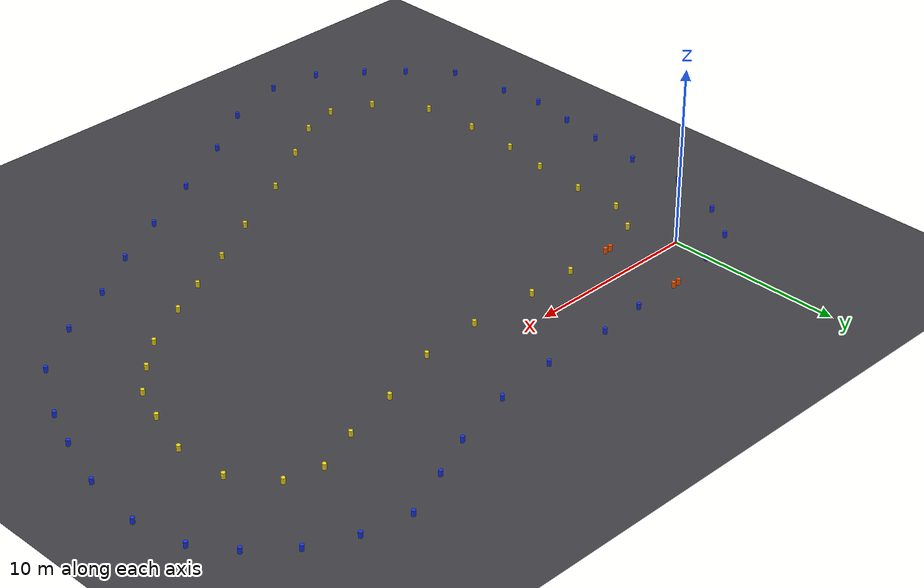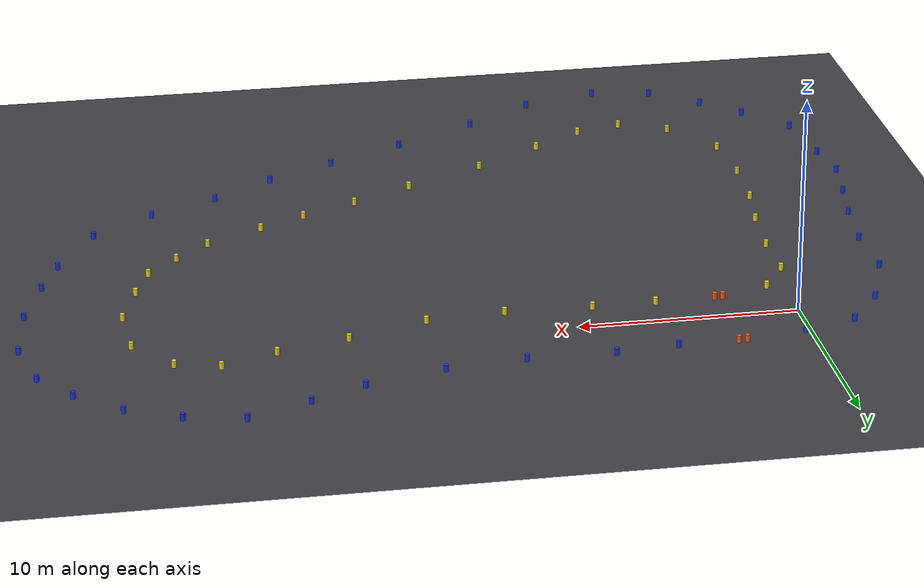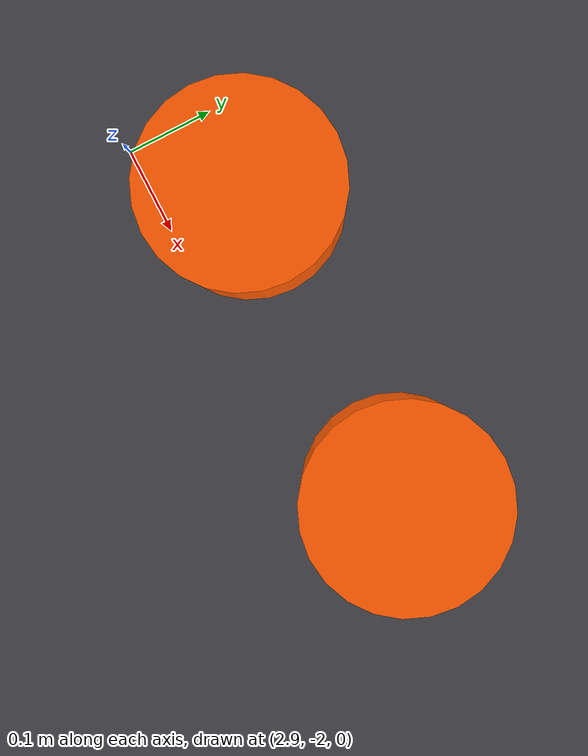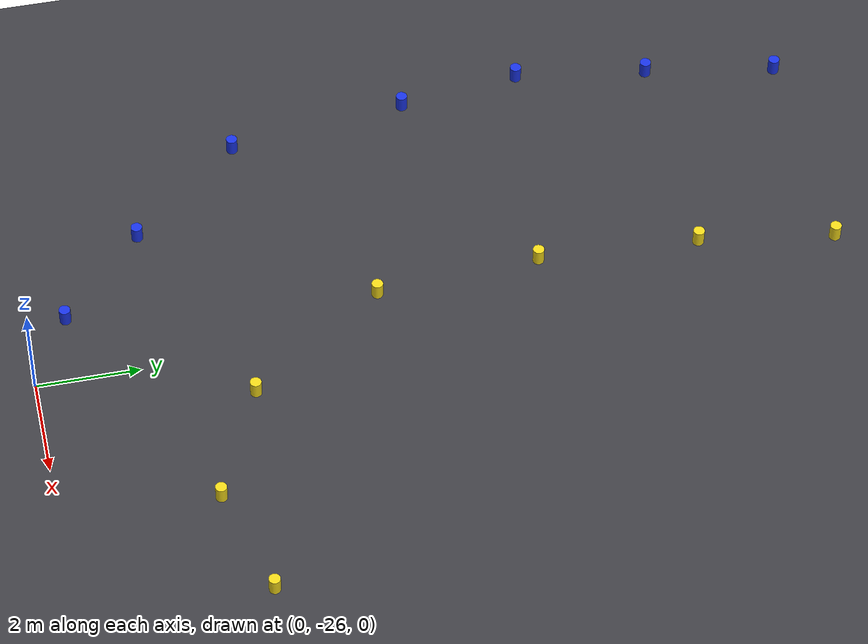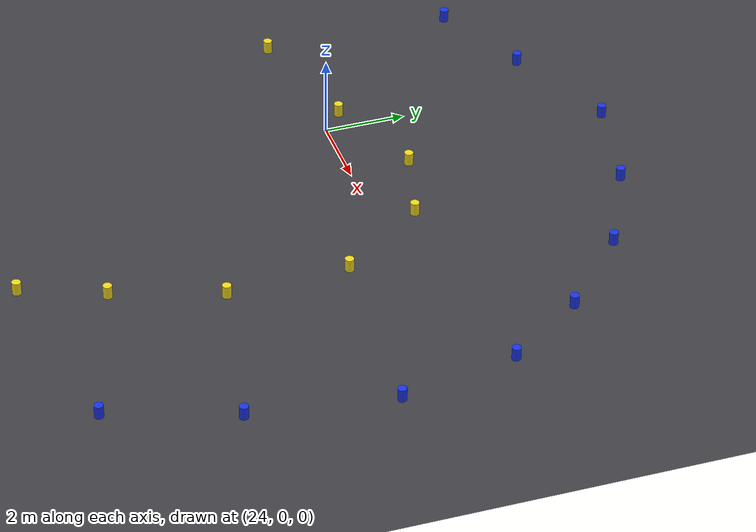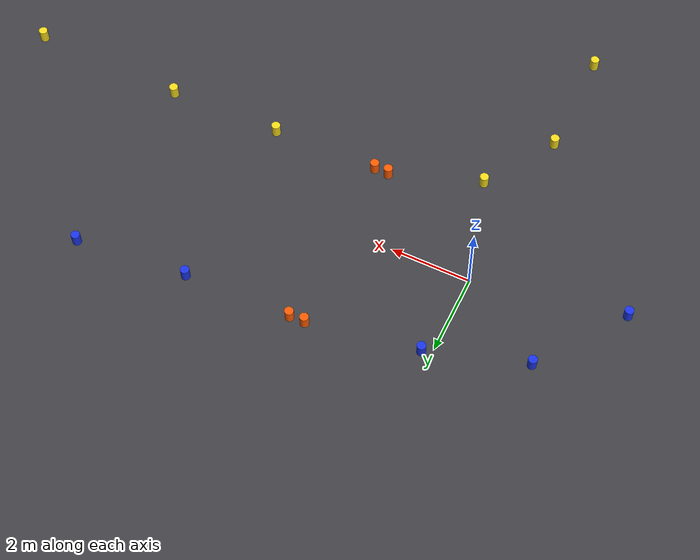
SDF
<?xml version="1.0" ?>
<sdf version="1.8">
  <world name="neurogrip_visual">
    <physics name="1ms" type="ignored">
      <max_step_size>0.001</max_step_size>
      <real_time_factor>1.0</real_time_factor>
    </physics>
    <plugin filename="libignition-gazebo-scene-broadcaster-system.so"
            name="ignition::gazebo::systems::SceneBroadcaster"/>
    <plugin filename="libignition-gazebo-physics-system.so"
            name="ignition::gazebo::systems::Physics"/>
    <plugin filename="libignition-gazebo-user-commands-system.so"
            name="ignition::gazebo::systems::UserCommands"/>
    <scene>
      <ambient>0.6 0.6 0.6 1</ambient>
      <background>0.8 0.85 0.9 1</background>
    </scene>
    <light type="directional" name="sun">
      <cast_shadows>true</cast_shadows>
      <pose>0 0 10 0 0 0</pose>
      <diffuse>0.9 0.9 0.9 1</diffuse>
      <specular>0.2 0.2 0.2 1</specular>
      <direction>-0.5 0.1 -0.9</direction>
    </light>
    <model name="ground_plane">
      <static>true</static>
      <link name="link">
        <collision name="collision">
          <geometry><plane><normal>0 0 1</normal><size>200 200</size></plane></geometry>
          <surface><friction><ode><mu>1.0</mu><mu2>1.0</mu2></ode></friction></surface>
        </collision>
        <visual name="visual">
          <geometry><plane><normal>0 0 1</normal><size>200 200</size></plane></geometry>
          <material><ambient>0.25 0.25 0.27 1</ambient><diffuse>0.25 0.25 0.27 1</diffuse></material>
        </visual>
      </link>
    </model>
    <model name="cone_0000_blue">
      <static>true</static>
      <link name="link">
        <collision name="collision">
          <geometry><cylinder><radius>0.11</radius><length>0.325</length></cylinder></geometry>
        </collision>
        <visual name="visual">
          <geometry><cylinder><radius>0.11</radius><length>0.325</length></cylinder></geometry>
          <material><ambient>0.1 0.2 0.9 1</ambient><diffuse>0.1 0.2 0.9 1</diffuse></material>
        </visual>
      </link>
      <pose>-3.7219 -0.7307 0.1625 0 0 0</pose>
    </model>
    <model name="cone_0001_blue">
      <static>true</static>
      <link name="link">
        <collision name="collision">
          <geometry><cylinder><radius>0.11</radius><length>0.325</length></cylinder></geometry>
        </collision>
        <visual name="visual">
          <geometry><cylinder><radius>0.11</radius><length>0.325</length></cylinder></geometry>
          <material><ambient>0.1 0.2 0.9 1</ambient><diffuse>0.1 0.2 0.9 1</diffuse></material>
        </visual>
      </link>
      <pose>0.2447 2.1900 0.1625 0 0 0</pose>
    </model>
    <model name="cone_0002_blue">
      <static>true</static>
      <link name="link">
        <collision name="collision">
          <geometry><cylinder><radius>0.11</radius><length>0.325</length></cylinder></geometry>
        </collision>
        <visual name="visual">
          <geometry><cylinder><radius>0.11</radius><length>0.325</length></cylinder></geometry>
          <material><ambient>0.1 0.2 0.9 1</ambient><diffuse>0.1 0.2 0.9 1</diffuse></material>
        </visual>
      </link>
      <pose>6.1094 2.7757 0.1625 0 0 0</pose>
    </model>
    <model name="cone_0003_blue">
      <static>true</static>
      <link name="link">
        <collision name="collision">
          <geometry><cylinder><radius>0.11</radius><length>0.325</length></cylinder></geometry>
        </collision>
        <visual name="visual">
          <geometry><cylinder><radius>0.11</radius><length>0.325</length></cylinder></geometry>
          <material><ambient>0.1 0.2 0.9 1</ambient><diffuse>0.1 0.2 0.9 1</diffuse></material>
        </visual>
      </link>
      <pose>22.6296 5.5379 0.1625 0 0 0</pose>
    </model>
    <model name="cone_0004_blue">
      <static>true</static>
      <link name="link">
        <collision name="collision">
          <geometry><cylinder><radius>0.11</radius><length>0.325</length></cylinder></geometry>
        </collision>
        <visual name="visual">
          <geometry><cylinder><radius>0.11</radius><length>0.325</length></cylinder></geometry>
          <material><ambient>0.1 0.2 0.9 1</ambient><diffuse>0.1 0.2 0.9 1</diffuse></material>
        </visual>
      </link>
      <pose>25.4920 6.7404 0.1625 0 0 0</pose>
    </model>
    <model name="cone_0005_blue">
      <static>true</static>
      <link name="link">
        <collision name="collision">
          <geometry><cylinder><radius>0.11</radius><length>0.325</length></cylinder></geometry>
        </collision>
        <visual name="visual">
          <geometry><cylinder><radius>0.11</radius><length>0.325</length></cylinder></geometry>
          <material><ambient>0.1 0.2 0.9 1</ambient><diffuse>0.1 0.2 0.9 1</diffuse></material>
        </visual>
      </link>
      <pose>28.1389 6.2025 0.1625 0 0 0</pose>
    </model>
    <model name="cone_0006_blue">
      <static>true</static>
      <link name="link">
        <collision name="collision">
          <geometry><cylinder><radius>0.11</radius><length>0.325</length></cylinder></geometry>
        </collision>
        <visual name="visual">
          <geometry><cylinder><radius>0.11</radius><length>0.325</length></cylinder></geometry>
          <material><ambient>0.1 0.2 0.9 1</ambient><diffuse>0.1 0.2 0.9 1</diffuse></material>
        </visual>
      </link>
      <pose>32.5034 3.3361 0.1625 0 0 0</pose>
    </model>
    <model name="cone_0007_blue">
      <static>true</static>
      <link name="link">
        <collision name="collision">
          <geometry><cylinder><radius>0.11</radius><length>0.325</length></cylinder></geometry>
        </collision>
        <visual name="visual">
          <geometry><cylinder><radius>0.11</radius><length>0.325</length></cylinder></geometry>
          <material><ambient>0.1 0.2 0.9 1</ambient><diffuse>0.1 0.2 0.9 1</diffuse></material>
        </visual>
      </link>
      <pose>33.8922 1.4012 0.1625 0 0 0</pose>
    </model>
    <model name="cone_0008_blue">
      <static>true</static>
      <link name="link">
        <collision name="collision">
          <geometry><cylinder><radius>0.11</radius><length>0.325</length></cylinder></geometry>
        </collision>
        <visual name="visual">
          <geometry><cylinder><radius>0.11</radius><length>0.325</length></cylinder></geometry>
          <material><ambient>0.1 0.2 0.9 1</ambient><diffuse>0.1 0.2 0.9 1</diffuse></material>
        </visual>
      </link>
      <pose>30.5221 5.0812 0.1625 0 0 0</pose>
    </model>
    <model name="cone_0009_blue">
      <static>true</static>
      <link name="link">
        <collision name="collision">
          <geometry><cylinder><radius>0.11</radius><length>0.325</length></cylinder></geometry>
        </collision>
        <visual name="visual">
          <geometry><cylinder><radius>0.11</radius><length>0.325</length></cylinder></geometry>
          <material><ambient>0.1 0.2 0.9 1</ambient><diffuse>0.1 0.2 0.9 1</diffuse></material>
        </visual>
      </link>
      <pose>34.4761 -1.5043 0.1625 0 0 0</pose>
    </model>
    <model name="cone_0010_blue">
      <static>true</static>
      <link name="link">
        <collision name="collision">
          <geometry><cylinder><radius>0.11</radius><length>0.325</length></cylinder></geometry>
        </collision>
        <visual name="visual">
          <geometry><cylinder><radius>0.11</radius><length>0.325</length></cylinder></geometry>
          <material><ambient>0.1 0.2 0.9 1</ambient><diffuse>0.1 0.2 0.9 1</diffuse></material>
        </visual>
      </link>
      <pose>33.9992 -5.0234 0.1625 0 0 0</pose>
    </model>
    <model name="cone_0011_blue">
      <static>true</static>
      <link name="link">
        <collision name="collision">
          <geometry><cylinder><radius>0.11</radius><length>0.325</length></cylinder></geometry>
        </collision>
        <visual name="visual">
          <geometry><cylinder><radius>0.11</radius><length>0.325</length></cylinder></geometry>
          <material><ambient>0.1 0.2 0.9 1</ambient><diffuse>0.1 0.2 0.9 1</diffuse></material>
        </visual>
      </link>
      <pose>32.9925 -8.0595 0.1625 0 0 0</pose>
    </model>
    <model name="cone_0012_blue">
      <static>true</static>
      <link name="link">
        <collision name="collision">
          <geometry><cylinder><radius>0.11</radius><length>0.325</length></cylinder></geometry>
        </collision>
        <visual name="visual">
          <geometry><cylinder><radius>0.11</radius><length>0.325</length></cylinder></geometry>
          <material><ambient>0.1 0.2 0.9 1</ambient><diffuse>0.1 0.2 0.9 1</diffuse></material>
        </visual>
      </link>
      <pose>32.0983 -10.3000 0.1625 0 0 0</pose>
    </model>
    <model name="cone_0013_blue">
      <static>true</static>
      <link name="link">
        <collision name="collision">
          <geometry><cylinder><radius>0.11</radius><length>0.325</length></cylinder></geometry>
        </collision>
        <visual name="visual">
          <geometry><cylinder><radius>0.11</radius><length>0.325</length></cylinder></geometry>
          <material><ambient>0.1 0.2 0.9 1</ambient><diffuse>0.1 0.2 0.9 1</diffuse></material>
        </visual>
      </link>
      <pose>30.1824 -13.5399 0.1625 0 0 0</pose>
    </model>
    <model name="cone_0014_blue">
      <static>true</static>
      <link name="link">
        <collision name="collision">
          <geometry><cylinder><radius>0.11</radius><length>0.325</length></cylinder></geometry>
        </collision>
        <visual name="visual">
          <geometry><cylinder><radius>0.11</radius><length>0.325</length></cylinder></geometry>
          <material><ambient>0.1 0.2 0.9 1</ambient><diffuse>0.1 0.2 0.9 1</diffuse></material>
        </visual>
      </link>
      <pose>24.1140 -17.0441 0.1625 0 0 0</pose>
    </model>
    <model name="cone_0015_blue">
      <static>true</static>
      <link name="link">
        <collision name="collision">
          <geometry><cylinder><radius>0.11</radius><length>0.325</length></cylinder></geometry>
        </collision>
        <visual name="visual">
          <geometry><cylinder><radius>0.11</radius><length>0.325</length></cylinder></geometry>
          <material><ambient>0.1 0.2 0.9 1</ambient><diffuse>0.1 0.2 0.9 1</diffuse></material>
        </visual>
      </link>
      <pose>8.9345 3.0637 0.1625 0 0 0</pose>
    </model>
    <model name="cone_0016_blue">
      <static>true</static>
      <link name="link">
        <collision name="collision">
          <geometry><cylinder><radius>0.11</radius><length>0.325</length></cylinder></geometry>
        </collision>
        <visual name="visual">
          <geometry><cylinder><radius>0.11</radius><length>0.325</length></cylinder></geometry>
          <material><ambient>0.1 0.2 0.9 1</ambient><diffuse>0.1 0.2 0.9 1</diffuse></material>
        </visual>
      </link>
      <pose>27.2831 -15.5644 0.1625 0 0 0</pose>
    </model>
    <model name="cone_0017_blue">
      <static>true</static>
      <link name="link">
        <collision name="collision">
          <geometry><cylinder><radius>0.11</radius><length>0.325</length></cylinder></geometry>
        </collision>
        <visual name="visual">
          <geometry><cylinder><radius>0.11</radius><length>0.325</length></cylinder></geometry>
          <material><ambient>0.1 0.2 0.9 1</ambient><diffuse>0.1 0.2 0.9 1</diffuse></material>
        </visual>
      </link>
      <pose>21.2536 -18.8389 0.1625 0 0 0</pose>
    </model>
    <model name="cone_0018_blue">
      <static>true</static>
      <link name="link">
        <collision name="collision">
          <geometry><cylinder><radius>0.11</radius><length>0.325</length></cylinder></geometry>
        </collision>
        <visual name="visual">
          <geometry><cylinder><radius>0.11</radius><length>0.325</length></cylinder></geometry>
          <material><ambient>0.1 0.2 0.9 1</ambient><diffuse>0.1 0.2 0.9 1</diffuse></material>
        </visual>
      </link>
      <pose>18.0618 -20.4551 0.1625 0 0 0</pose>
    </model>
    <model name="cone_0019_blue">
      <static>true</static>
      <link name="link">
        <collision name="collision">
          <geometry><cylinder><radius>0.11</radius><length>0.325</length></cylinder></geometry>
        </collision>
        <visual name="visual">
          <geometry><cylinder><radius>0.11</radius><length>0.325</length></cylinder></geometry>
          <material><ambient>0.1 0.2 0.9 1</ambient><diffuse>0.1 0.2 0.9 1</diffuse></material>
        </visual>
      </link>
      <pose>14.4209 -22.2634 0.1625 0 0 0</pose>
    </model>
    <model name="cone_0020_blue">
      <static>true</static>
      <link name="link">
        <collision name="collision">
          <geometry><cylinder><radius>0.11</radius><length>0.325</length></cylinder></geometry>
        </collision>
        <visual name="visual">
          <geometry><cylinder><radius>0.11</radius><length>0.325</length></cylinder></geometry>
          <material><ambient>0.1 0.2 0.9 1</ambient><diffuse>0.1 0.2 0.9 1</diffuse></material>
        </visual>
      </link>
      <pose>10.5025 -24.3305 0.1625 0 0 0</pose>
    </model>
    <model name="cone_0021_blue">
      <static>true</static>
      <link name="link">
        <collision name="collision">
          <geometry><cylinder><radius>0.11</radius><length>0.325</length></cylinder></geometry>
        </collision>
        <visual name="visual">
          <geometry><cylinder><radius>0.11</radius><length>0.325</length></cylinder></geometry>
          <material><ambient>0.1 0.2 0.9 1</ambient><diffuse>0.1 0.2 0.9 1</diffuse></material>
        </visual>
      </link>
      <pose>7.2514 -26.4217 0.1625 0 0 0</pose>
    </model>
    <model name="cone_0022_blue">
      <static>true</static>
      <link name="link">
        <collision name="collision">
          <geometry><cylinder><radius>0.11</radius><length>0.325</length></cylinder></geometry>
        </collision>
        <visual name="visual">
          <geometry><cylinder><radius>0.11</radius><length>0.325</length></cylinder></geometry>
          <material><ambient>0.1 0.2 0.9 1</ambient><diffuse>0.1 0.2 0.9 1</diffuse></material>
        </visual>
      </link>
      <pose>3.6516 -27.4551 0.1625 0 0 0</pose>
    </model>
    <model name="cone_0023_blue">
      <static>true</static>
      <link name="link">
        <collision name="collision">
          <geometry><cylinder><radius>0.11</radius><length>0.325</length></cylinder></geometry>
        </collision>
        <visual name="visual">
          <geometry><cylinder><radius>0.11</radius><length>0.325</length></cylinder></geometry>
          <material><ambient>0.1 0.2 0.9 1</ambient><diffuse>0.1 0.2 0.9 1</diffuse></material>
        </visual>
      </link>
      <pose>0.7886 -26.9459 0.1625 0 0 0</pose>
    </model>
    <model name="cone_0024_blue">
      <static>true</static>
      <link name="link">
        <collision name="collision">
          <geometry><cylinder><radius>0.11</radius><length>0.325</length></cylinder></geometry>
        </collision>
        <visual name="visual">
          <geometry><cylinder><radius>0.11</radius><length>0.325</length></cylinder></geometry>
          <material><ambient>0.1 0.2 0.9 1</ambient><diffuse>0.1 0.2 0.9 1</diffuse></material>
        </visual>
      </link>
      <pose>-1.4625 -25.2249 0.1625 0 0 0</pose>
    </model>
    <model name="cone_0025_blue">
      <static>true</static>
      <link name="link">
        <collision name="collision">
          <geometry><cylinder><radius>0.11</radius><length>0.325</length></cylinder></geometry>
        </collision>
        <visual name="visual">
          <geometry><cylinder><radius>0.11</radius><length>0.325</length></cylinder></geometry>
          <material><ambient>0.1 0.2 0.9 1</ambient><diffuse>0.1 0.2 0.9 1</diffuse></material>
        </visual>
      </link>
      <pose>-3.2427 -23.5760 0.1625 0 0 0</pose>
    </model>
    <model name="cone_0026_blue">
      <static>true</static>
      <link name="link">
        <collision name="collision">
          <geometry><cylinder><radius>0.11</radius><length>0.325</length></cylinder></geometry>
        </collision>
        <visual name="visual">
          <geometry><cylinder><radius>0.11</radius><length>0.325</length></cylinder></geometry>
          <material><ambient>0.1 0.2 0.9 1</ambient><diffuse>0.1 0.2 0.9 1</diffuse></material>
        </visual>
      </link>
      <pose>12.8688 3.0125 0.1625 0 0 0</pose>
    </model>
    <model name="cone_0027_blue">
      <static>true</static>
      <link name="link">
        <collision name="collision">
          <geometry><cylinder><radius>0.11</radius><length>0.325</length></cylinder></geometry>
        </collision>
        <visual name="visual">
          <geometry><cylinder><radius>0.11</radius><length>0.325</length></cylinder></geometry>
          <material><ambient>0.1 0.2 0.9 1</ambient><diffuse>0.1 0.2 0.9 1</diffuse></material>
        </visual>
      </link>
      <pose>-5.1431 -21.3860 0.1625 0 0 0</pose>
    </model>
    <model name="cone_0028_blue">
      <static>true</static>
      <link name="link">
        <collision name="collision">
          <geometry><cylinder><radius>0.11</radius><length>0.325</length></cylinder></geometry>
        </collision>
        <visual name="visual">
          <geometry><cylinder><radius>0.11</radius><length>0.325</length></cylinder></geometry>
          <material><ambient>0.1 0.2 0.9 1</ambient><diffuse>0.1 0.2 0.9 1</diffuse></material>
        </visual>
      </link>
      <pose>-5.6174 -17.8608 0.1625 0 0 0</pose>
    </model>
    <model name="cone_0029_blue">
      <static>true</static>
      <link name="link">
        <collision name="collision">
          <geometry><cylinder><radius>0.11</radius><length>0.325</length></cylinder></geometry>
        </collision>
        <visual name="visual">
          <geometry><cylinder><radius>0.11</radius><length>0.325</length></cylinder></geometry>
          <material><ambient>0.1 0.2 0.9 1</ambient><diffuse>0.1 0.2 0.9 1</diffuse></material>
        </visual>
      </link>
      <pose>-5.9382 -15.4551 0.1625 0 0 0</pose>
    </model>
    <model name="cone_0030_blue">
      <static>true</static>
      <link name="link">
        <collision name="collision">
          <geometry><cylinder><radius>0.11</radius><length>0.325</length></cylinder></geometry>
        </collision>
        <visual name="visual">
          <geometry><cylinder><radius>0.11</radius><length>0.325</length></cylinder></geometry>
          <material><ambient>0.1 0.2 0.9 1</ambient><diffuse>0.1 0.2 0.9 1</diffuse></material>
        </visual>
      </link>
      <pose>-5.5558 -12.8602 0.1625 0 0 0</pose>
    </model>
    <model name="cone_0031_blue">
      <static>true</static>
      <link name="link">
        <collision name="collision">
          <geometry><cylinder><radius>0.11</radius><length>0.325</length></cylinder></geometry>
        </collision>
        <visual name="visual">
          <geometry><cylinder><radius>0.11</radius><length>0.325</length></cylinder></geometry>
          <material><ambient>0.1 0.2 0.9 1</ambient><diffuse>0.1 0.2 0.9 1</diffuse></material>
        </visual>
      </link>
      <pose>-5.1206 -10.3000 0.1625 0 0 0</pose>
    </model>
    <model name="cone_0032_blue">
      <static>true</static>
      <link name="link">
        <collision name="collision">
          <geometry><cylinder><radius>0.11</radius><length>0.325</length></cylinder></geometry>
        </collision>
        <visual name="visual">
          <geometry><cylinder><radius>0.11</radius><length>0.325</length></cylinder></geometry>
          <material><ambient>0.1 0.2 0.9 1</ambient><diffuse>0.1 0.2 0.9 1</diffuse></material>
        </visual>
      </link>
      <pose>-4.7841 -7.2575 0.1625 0 0 0</pose>
    </model>
    <model name="cone_0033_blue">
      <static>true</static>
      <link name="link">
        <collision name="collision">
          <geometry><cylinder><radius>0.11</radius><length>0.325</length></cylinder></geometry>
        </collision>
        <visual name="visual">
          <geometry><cylinder><radius>0.11</radius><length>0.325</length></cylinder></geometry>
          <material><ambient>0.1 0.2 0.9 1</ambient><diffuse>0.1 0.2 0.9 1</diffuse></material>
        </visual>
      </link>
      <pose>-4.8432 -4.0291 0.1625 0 0 0</pose>
    </model>
    <model name="cone_0034_blue">
      <static>true</static>
      <link name="link">
        <collision name="collision">
          <geometry><cylinder><radius>0.11</radius><length>0.325</length></cylinder></geometry>
        </collision>
        <visual name="visual">
          <geometry><cylinder><radius>0.11</radius><length>0.325</length></cylinder></geometry>
          <material><ambient>0.1 0.2 0.9 1</ambient><diffuse>0.1 0.2 0.9 1</diffuse></material>
        </visual>
      </link>
      <pose>-2.1864 1.4137 0.1625 0 0 0</pose>
    </model>
    <model name="cone_0035_blue">
      <static>true</static>
      <link name="link">
        <collision name="collision">
          <geometry><cylinder><radius>0.11</radius><length>0.325</length></cylinder></geometry>
        </collision>
        <visual name="visual">
          <geometry><cylinder><radius>0.11</radius><length>0.325</length></cylinder></geometry>
          <material><ambient>0.1 0.2 0.9 1</ambient><diffuse>0.1 0.2 0.9 1</diffuse></material>
        </visual>
      </link>
      <pose>16.5042 3.4245 0.1625 0 0 0</pose>
    </model>
    <model name="cone_0036_blue">
      <static>true</static>
      <link name="link">
        <collision name="collision">
          <geometry><cylinder><radius>0.11</radius><length>0.325</length></cylinder></geometry>
        </collision>
        <visual name="visual">
          <geometry><cylinder><radius>0.11</radius><length>0.325</length></cylinder></geometry>
          <material><ambient>0.1 0.2 0.9 1</ambient><diffuse>0.1 0.2 0.9 1</diffuse></material>
        </visual>
      </link>
      <pose>20.1368 4.4270 0.1625 0 0 0</pose>
    </model>
    <model name="cone_0037_yellow">
      <static>true</static>
      <link name="link">
        <collision name="collision">
          <geometry><cylinder><radius>0.11</radius><length>0.325</length></cylinder></geometry>
        </collision>
        <visual name="visual">
          <geometry><cylinder><radius>0.11</radius><length>0.325</length></cylinder></geometry>
          <material><ambient>0.95 0.85 0.1 1</ambient><diffuse>0.95 0.85 0.1 1</diffuse></material>
        </visual>
      </link>
      <pose>0.7816 -2.6920 0.1625 0 0 0</pose>
    </model>
    <model name="cone_0038_yellow">
      <static>true</static>
      <link name="link">
        <collision name="collision">
          <geometry><cylinder><radius>0.11</radius><length>0.325</length></cylinder></geometry>
        </collision>
        <visual name="visual">
          <geometry><cylinder><radius>0.11</radius><length>0.325</length></cylinder></geometry>
          <material><ambient>0.95 0.85 0.1 1</ambient><diffuse>0.95 0.85 0.1 1</diffuse></material>
        </visual>
      </link>
      <pose>20.1479 -0.3734 0.1625 0 0 0</pose>
    </model>
    <model name="cone_0039_yellow">
      <static>true</static>
      <link name="link">
        <collision name="collision">
          <geometry><cylinder><radius>0.11</radius><length>0.325</length></cylinder></geometry>
        </collision>
        <visual name="visual">
          <geometry><cylinder><radius>0.11</radius><length>0.325</length></cylinder></geometry>
          <material><ambient>0.95 0.85 0.1 1</ambient><diffuse>0.95 0.85 0.1 1</diffuse></material>
        </visual>
      </link>
      <pose>23.4312 0.4990 0.1625 0 0 0</pose>
    </model>
    <model name="cone_0040_yellow">
      <static>true</static>
      <link name="link">
        <collision name="collision">
          <geometry><cylinder><radius>0.11</radius><length>0.325</length></cylinder></geometry>
        </collision>
        <visual name="visual">
          <geometry><cylinder><radius>0.11</radius><length>0.325</length></cylinder></geometry>
          <material><ambient>0.95 0.85 0.1 1</ambient><diffuse>0.95 0.85 0.1 1</diffuse></material>
        </visual>
      </link>
      <pose>25.9655 1.5014 0.1625 0 0 0</pose>
    </model>
    <model name="cone_0041_yellow">
      <static>true</static>
      <link name="link">
        <collision name="collision">
          <geometry><cylinder><radius>0.11</radius><length>0.325</length></cylinder></geometry>
        </collision>
        <visual name="visual">
          <geometry><cylinder><radius>0.11</radius><length>0.325</length></cylinder></geometry>
          <material><ambient>0.95 0.85 0.1 1</ambient><diffuse>0.95 0.85 0.1 1</diffuse></material>
        </visual>
      </link>
      <pose>27.9652 0.9833 0.1625 0 0 0</pose>
    </model>
    <model name="cone_0042_yellow">
      <static>true</static>
      <link name="link">
        <collision name="collision">
          <geometry><cylinder><radius>0.11</radius><length>0.325</length></cylinder></geometry>
        </collision>
        <visual name="visual">
          <geometry><cylinder><radius>0.11</radius><length>0.325</length></cylinder></geometry>
          <material><ambient>0.95 0.85 0.1 1</ambient><diffuse>0.95 0.85 0.1 1</diffuse></material>
        </visual>
      </link>
      <pose>29.6054 -1.1797 0.1625 0 0 0</pose>
    </model>
    <model name="cone_0043_yellow">
      <static>true</static>
      <link name="link">
        <collision name="collision">
          <geometry><cylinder><radius>0.11</radius><length>0.325</length></cylinder></geometry>
        </collision>
        <visual name="visual">
          <geometry><cylinder><radius>0.11</radius><length>0.325</length></cylinder></geometry>
          <material><ambient>0.95 0.85 0.1 1</ambient><diffuse>0.95 0.85 0.1 1</diffuse></material>
        </visual>
      </link>
      <pose>6.0900 -1.8555 0.1625 0 0 0</pose>
    </model>
    <model name="cone_0044_yellow">
      <static>true</static>
      <link name="link">
        <collision name="collision">
          <geometry><cylinder><radius>0.11</radius><length>0.325</length></cylinder></geometry>
        </collision>
        <visual name="visual">
          <geometry><cylinder><radius>0.11</radius><length>0.325</length></cylinder></geometry>
          <material><ambient>0.95 0.85 0.1 1</ambient><diffuse>0.95 0.85 0.1 1</diffuse></material>
        </visual>
      </link>
      <pose>29.7063 -4.1923 0.1625 0 0 0</pose>
    </model>
    <model name="cone_0045_yellow">
      <static>true</static>
      <link name="link">
        <collision name="collision">
          <geometry><cylinder><radius>0.11</radius><length>0.325</length></cylinder></geometry>
        </collision>
        <visual name="visual">
          <geometry><cylinder><radius>0.11</radius><length>0.325</length></cylinder></geometry>
          <material><ambient>0.95 0.85 0.1 1</ambient><diffuse>0.95 0.85 0.1 1</diffuse></material>
        </visual>
      </link>
      <pose>28.8760 -6.8209 0.1625 0 0 0</pose>
    </model>
    <model name="cone_0046_yellow">
      <static>true</static>
      <link name="link">
        <collision name="collision">
          <geometry><cylinder><radius>0.11</radius><length>0.325</length></cylinder></geometry>
        </collision>
        <visual name="visual">
          <geometry><cylinder><radius>0.11</radius><length>0.325</length></cylinder></geometry>
          <material><ambient>0.95 0.85 0.1 1</ambient><diffuse>0.95 0.85 0.1 1</diffuse></material>
        </visual>
      </link>
      <pose>28.1060 -8.7973 0.1625 0 0 0</pose>
    </model>
    <model name="cone_0047_yellow">
      <static>true</static>
      <link name="link">
        <collision name="collision">
          <geometry><cylinder><radius>0.11</radius><length>0.325</length></cylinder></geometry>
        </collision>
        <visual name="visual">
          <geometry><cylinder><radius>0.11</radius><length>0.325</length></cylinder></geometry>
          <material><ambient>0.95 0.85 0.1 1</ambient><diffuse>0.95 0.85 0.1 1</diffuse></material>
        </visual>
      </link>
      <pose>26.6765 -10.3000 0.1625 0 0 0</pose>
    </model>
    <model name="cone_0048_yellow">
      <static>true</static>
      <link name="link">
        <collision name="collision">
          <geometry><cylinder><radius>0.11</radius><length>0.325</length></cylinder></geometry>
        </collision>
        <visual name="visual">
          <geometry><cylinder><radius>0.11</radius><length>0.325</length></cylinder></geometry>
          <material><ambient>0.95 0.85 0.1 1</ambient><diffuse>0.95 0.85 0.1 1</diffuse></material>
        </visual>
      </link>
      <pose>22.4195 -13.1474 0.1625 0 0 0</pose>
    </model>
    <model name="cone_0049_yellow">
      <static>true</static>
      <link name="link">
        <collision name="collision">
          <geometry><cylinder><radius>0.11</radius><length>0.325</length></cylinder></geometry>
        </collision>
        <visual name="visual">
          <geometry><cylinder><radius>0.11</radius><length>0.325</length></cylinder></geometry>
          <material><ambient>0.95 0.85 0.1 1</ambient><diffuse>0.95 0.85 0.1 1</diffuse></material>
        </visual>
      </link>
      <pose>25.0732 -11.7312 0.1625 0 0 0</pose>
    </model>
    <model name="cone_0050_yellow">
      <static>true</static>
      <link name="link">
        <collision name="collision">
          <geometry><cylinder><radius>0.11</radius><length>0.325</length></cylinder></geometry>
        </collision>
        <visual name="visual">
          <geometry><cylinder><radius>0.11</radius><length>0.325</length></cylinder></geometry>
          <material><ambient>0.95 0.85 0.1 1</ambient><diffuse>0.95 0.85 0.1 1</diffuse></material>
        </visual>
      </link>
      <pose>20.2628 -14.2408 0.1625 0 0 0</pose>
    </model>
    <model name="cone_0051_yellow">
      <static>true</static>
      <link name="link">
        <collision name="collision">
          <geometry><cylinder><radius>0.11</radius><length>0.325</length></cylinder></geometry>
        </collision>
        <visual name="visual">
          <geometry><cylinder><radius>0.11</radius><length>0.325</length></cylinder></geometry>
          <material><ambient>0.95 0.85 0.1 1</ambient><diffuse>0.95 0.85 0.1 1</diffuse></material>
        </visual>
      </link>
      <pose>17.6516 -15.4551 0.1625 0 0 0</pose>
    </model>
    <model name="cone_0052_yellow">
      <static>true</static>
      <link name="link">
        <collision name="collision">
          <geometry><cylinder><radius>0.11</radius><length>0.325</length></cylinder></geometry>
        </collision>
        <visual name="visual">
          <geometry><cylinder><radius>0.11</radius><length>0.325</length></cylinder></geometry>
          <material><ambient>0.95 0.85 0.1 1</ambient><diffuse>0.95 0.85 0.1 1</diffuse></material>
        </visual>
      </link>
      <pose>14.7877 -16.9672 0.1625 0 0 0</pose>
    </model>
    <model name="cone_0053_yellow">
      <static>true</static>
      <link name="link">
        <collision name="collision">
          <geometry><cylinder><radius>0.11</radius><length>0.325</length></cylinder></geometry>
        </collision>
        <visual name="visual">
          <geometry><cylinder><radius>0.11</radius><length>0.325</length></cylinder></geometry>
          <material><ambient>0.95 0.85 0.1 1</ambient><diffuse>0.95 0.85 0.1 1</diffuse></material>
        </visual>
      </link>
      <pose>11.0203 -18.8633 0.1625 0 0 0</pose>
    </model>
    <model name="cone_0054_yellow">
      <static>true</static>
      <link name="link">
        <collision name="collision">
          <geometry><cylinder><radius>0.11</radius><length>0.325</length></cylinder></geometry>
        </collision>
        <visual name="visual">
          <geometry><cylinder><radius>0.11</radius><length>0.325</length></cylinder></geometry>
          <material><ambient>0.95 0.85 0.1 1</ambient><diffuse>0.95 0.85 0.1 1</diffuse></material>
        </visual>
      </link>
      <pose>8.9831 -1.7968 0.1625 0 0 0</pose>
    </model>
    <model name="cone_0055_yellow">
      <static>true</static>
      <link name="link">
        <collision name="collision">
          <geometry><cylinder><radius>0.11</radius><length>0.325</length></cylinder></geometry>
        </collision>
        <visual name="visual">
          <geometry><cylinder><radius>0.11</radius><length>0.325</length></cylinder></geometry>
          <material><ambient>0.95 0.85 0.1 1</ambient><diffuse>0.95 0.85 0.1 1</diffuse></material>
        </visual>
      </link>
      <pose>7.8188 -20.8555 0.1625 0 0 0</pose>
    </model>
    <model name="cone_0056_yellow">
      <static>true</static>
      <link name="link">
        <collision name="collision">
          <geometry><cylinder><radius>0.11</radius><length>0.325</length></cylinder></geometry>
        </collision>
        <visual name="visual">
          <geometry><cylinder><radius>0.11</radius><length>0.325</length></cylinder></geometry>
          <material><ambient>0.95 0.85 0.1 1</ambient><diffuse>0.95 0.85 0.1 1</diffuse></material>
        </visual>
      </link>
      <pose>5.4296 -22.4125 0.1625 0 0 0</pose>
    </model>
    <model name="cone_0057_yellow">
      <static>true</static>
      <link name="link">
        <collision name="collision">
          <geometry><cylinder><radius>0.11</radius><length>0.325</length></cylinder></geometry>
        </collision>
        <visual name="visual">
          <geometry><cylinder><radius>0.11</radius><length>0.325</length></cylinder></geometry>
          <material><ambient>0.95 0.85 0.1 1</ambient><diffuse>0.95 0.85 0.1 1</diffuse></material>
        </visual>
      </link>
      <pose>3.2361 -23.0081 0.1625 0 0 0</pose>
    </model>
    <model name="cone_0058_yellow">
      <static>true</static>
      <link name="link">
        <collision name="collision">
          <geometry><cylinder><radius>0.11</radius><length>0.325</length></cylinder></geometry>
        </collision>
        <visual name="visual">
          <geometry><cylinder><radius>0.11</radius><length>0.325</length></cylinder></geometry>
          <material><ambient>0.95 0.85 0.1 1</ambient><diffuse>0.95 0.85 0.1 1</diffuse></material>
        </visual>
      </link>
      <pose>0.9662 -21.9718 0.1625 0 0 0</pose>
    </model>
    <model name="cone_0059_yellow">
      <static>true</static>
      <link name="link">
        <collision name="collision">
          <geometry><cylinder><radius>0.11</radius><length>0.325</length></cylinder></geometry>
        </collision>
        <visual name="visual">
          <geometry><cylinder><radius>0.11</radius><length>0.325</length></cylinder></geometry>
          <material><ambient>0.95 0.85 0.1 1</ambient><diffuse>0.95 0.85 0.1 1</diffuse></material>
        </visual>
      </link>
      <pose>-0.9298 -19.2829 0.1625 0 0 0</pose>
    </model>
    <model name="cone_0060_yellow">
      <static>true</static>
      <link name="link">
        <collision name="collision">
          <geometry><cylinder><radius>0.11</radius><length>0.325</length></cylinder></geometry>
        </collision>
        <visual name="visual">
          <geometry><cylinder><radius>0.11</radius><length>0.325</length></cylinder></geometry>
          <material><ambient>0.95 0.85 0.1 1</ambient><diffuse>0.95 0.85 0.1 1</diffuse></material>
        </visual>
      </link>
      <pose>-1.1575 -16.0733 0.1625 0 0 0</pose>
    </model>
    <model name="cone_0061_yellow">
      <static>true</static>
      <link name="link">
        <collision name="collision">
          <geometry><cylinder><radius>0.11</radius><length>0.325</length></cylinder></geometry>
        </collision>
        <visual name="visual">
          <geometry><cylinder><radius>0.11</radius><length>0.325</length></cylinder></geometry>
          <material><ambient>0.95 0.85 0.1 1</ambient><diffuse>0.95 0.85 0.1 1</diffuse></material>
        </visual>
      </link>
      <pose>-1.0043 -12.9300 0.1625 0 0 0</pose>
    </model>
    <model name="cone_0062_yellow">
      <static>true</static>
      <link name="link">
        <collision name="collision">
          <geometry><cylinder><radius>0.11</radius><length>0.325</length></cylinder></geometry>
        </collision>
        <visual name="visual">
          <geometry><cylinder><radius>0.11</radius><length>0.325</length></cylinder></geometry>
          <material><ambient>0.95 0.85 0.1 1</ambient><diffuse>0.95 0.85 0.1 1</diffuse></material>
        </visual>
      </link>
      <pose>-0.6087 -10.3000 0.1625 0 0 0</pose>
    </model>
    <model name="cone_0063_yellow">
      <static>true</static>
      <link name="link">
        <collision name="collision">
          <geometry><cylinder><radius>0.11</radius><length>0.325</length></cylinder></geometry>
        </collision>
        <visual name="visual">
          <geometry><cylinder><radius>0.11</radius><length>0.325</length></cylinder></geometry>
          <material><ambient>0.95 0.85 0.1 1</ambient><diffuse>0.95 0.85 0.1 1</diffuse></material>
        </visual>
      </link>
      <pose>-0.3478 -7.2429 0.1625 0 0 0</pose>
    </model>
    <model name="cone_0064_yellow">
      <static>true</static>
      <link name="link">
        <collision name="collision">
          <geometry><cylinder><radius>0.11</radius><length>0.325</length></cylinder></geometry>
        </collision>
        <visual name="visual">
          <geometry><cylinder><radius>0.11</radius><length>0.325</length></cylinder></geometry>
          <material><ambient>0.95 0.85 0.1 1</ambient><diffuse>0.95 0.85 0.1 1</diffuse></material>
        </visual>
      </link>
      <pose>12.9402 -1.9241 0.1625 0 0 0</pose>
    </model>
    <model name="cone_0065_yellow">
      <static>true</static>
      <link name="link">
        <collision name="collision">
          <geometry><cylinder><radius>0.11</radius><length>0.325</length></cylinder></geometry>
        </collision>
        <visual name="visual">
          <geometry><cylinder><radius>0.11</radius><length>0.325</length></cylinder></geometry>
          <material><ambient>0.95 0.85 0.1 1</ambient><diffuse>0.95 0.85 0.1 1</diffuse></material>
        </visual>
      </link>
      <pose>-0.3455 -4.5119 0.1625 0 0 0</pose>
    </model>
    <model name="cone_0066_yellow">
      <static>true</static>
      <link name="link">
        <collision name="collision">
          <geometry><cylinder><radius>0.11</radius><length>0.325</length></cylinder></geometry>
        </collision>
        <visual name="visual">
          <geometry><cylinder><radius>0.11</radius><length>0.325</length></cylinder></geometry>
          <material><ambient>0.95 0.85 0.1 1</ambient><diffuse>0.95 0.85 0.1 1</diffuse></material>
        </visual>
      </link>
      <pose>16.5151 -1.6032 0.1625 0 0 0</pose>
    </model>
    <model name="cone_0067_big_orange">
      <static>true</static>
      <link name="link">
        <collision name="collision">
          <geometry><cylinder><radius>0.11</radius><length>0.325</length></cylinder></geometry>
        </collision>
        <visual name="visual">
          <geometry><cylinder><radius>0.11</radius><length>0.325</length></cylinder></geometry>
          <material><ambient>1.0 0.35 0.0 1</ambient><diffuse>1.0 0.35 0.0 1</diffuse></material>
        </visual>
      </link>
      <pose>3.3869 2.7000 0.1625 0 0 0</pose>
    </model>
    <model name="cone_0068_big_orange">
      <static>true</static>
      <link name="link">
        <collision name="collision">
          <geometry><cylinder><radius>0.11</radius><length>0.325</length></cylinder></geometry>
        </collision>
        <visual name="visual">
          <geometry><cylinder><radius>0.11</radius><length>0.325</length></cylinder></geometry>
          <material><ambient>1.0 0.35 0.0 1</ambient><diffuse>1.0 0.35 0.0 1</diffuse></material>
        </visual>
      </link>
      <pose>3.0007 2.6890 0.1625 0 0 0</pose>
    </model>
    <model name="cone_0069_big_orange">
      <static>true</static>
      <link name="link">
        <collision name="collision">
          <geometry><cylinder><radius>0.11</radius><length>0.325</length></cylinder></geometry>
        </collision>
        <visual name="visual">
          <geometry><cylinder><radius>0.11</radius><length>0.325</length></cylinder></geometry>
          <material><ambient>1.0 0.35 0.0 1</ambient><diffuse>1.0 0.35 0.0 1</diffuse></material>
        </visual>
      </link>
      <pose>3.3785 -1.9068 0.1625 0 0 0</pose>
    </model>
    <model name="cone_0070_big_orange">
      <static>true</static>
      <link name="link">
        <collision name="collision">
          <geometry><cylinder><radius>0.11</radius><length>0.325</length></cylinder></geometry>
        </collision>
        <visual name="visual">
          <geometry><cylinder><radius>0.11</radius><length>0.325</length></cylinder></geometry>
          <material><ambient>1.0 0.35 0.0 1</ambient><diffuse>1.0 0.35 0.0 1</diffuse></material>
        </visual>
      </link>
      <pose>3.0133 -1.9065 0.1625 0 0 0</pose>
    </model>
  </world>
</sdf>
